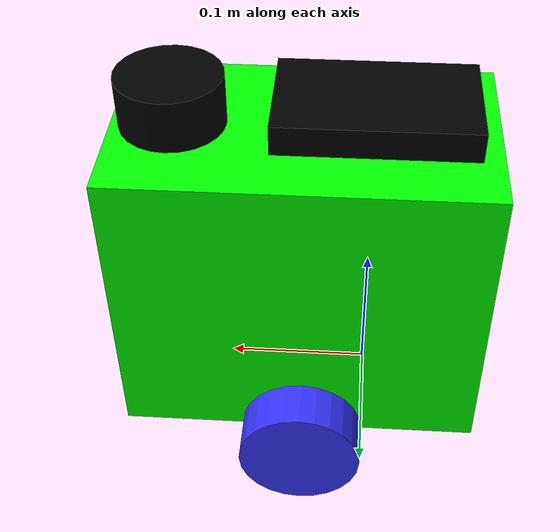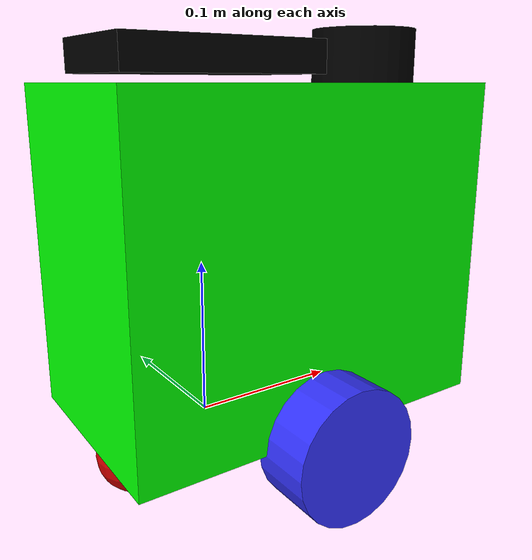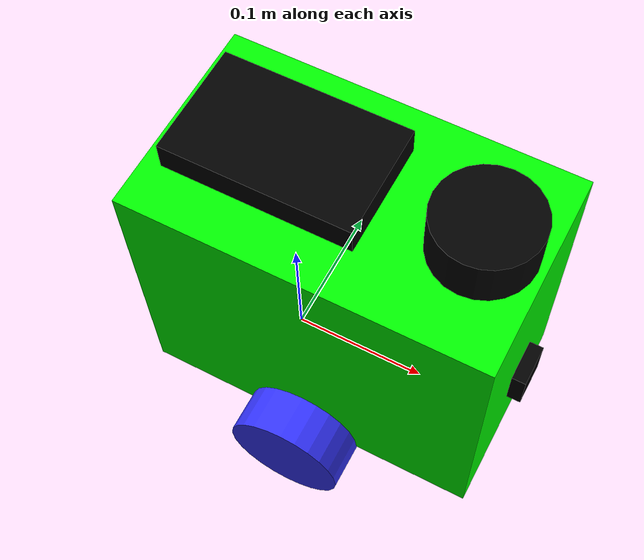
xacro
<?xml version="1.0"?>
<robot xmlns:xacro="http://www.ros.org/wiki/xacro"  name="robot">

    <xacro:arg name="use_ros2_control" default="true"/>
    <xacro:arg name="sim_mode" default="false"/>
    <xacro:arg name="use_ros2_control_gz_sim"       default="false"/>

    <xacro:include filename="robot_body.xacro"  />

    <xacro:if value="$(arg use_ros2_control)">
        <xacro:include filename="ros2_control.xacro" />
    </xacro:if>

    <xacro:unless value="$(arg use_ros2_control)">
        <xacro:include filename="gazebo_control.xacro" />
    </xacro:unless>

    <xacro:include filename="rplidar.xacro"/>

    <xacro:include filename="depth_camera.xacro" />

    <xacro:include filename="imu.xacro"/>

    <xacro:include filename="gps.xacro"/>

</robot>

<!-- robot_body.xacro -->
<robot xmlns:xacro="http://www.ros.org/wiki/xacro" >
    <xacro:include filename="inertial_macros.xacro" />
    <material name ="white">
        <color rgba ="1 1 1 1" />
    </material>

    <material name ="orange">
        <color rgba ="1 0.3 0.1 1" />
    </material>

    <material name ="blue">
        <color rgba ="0.2 0.2 1 1" />
    </material>

    <material name ="black">
        <color rgba ="0 0 0 1" />
    </material>

    <material name="red">
        <color rgba="0.8 0.0 0.0 1.0"/>
    </material>

    <material name ="green">
            <color rgba="0.0 1.0 0.0 1.0"/>
    </material>

    <link name="base_link">

    </link>

    <joint name="base_footprint_joint" type="fixed">
        <parent link="base_link" />
        <child link="base_footprint"  />
        <origin xyz ="0 0 0" rpy="0 0 0" />
    </joint>

   <link name="base_footprint">

    </link>

    <joint name="chasssis_joint" type="fixed">
        <parent link="base_link" />
        <child link="chassis"  />
        <origin xyz ="-0.08 0 0" />
    </joint>

    <link name="chassis">

        <visual>
            <origin xyz = "0.125 0 0.105"  />
            <geometry>
                <box size="0.25 0.145 0.21" />

            </geometry>
                <material name="green" />

        </visual>

        <collision>
            <origin xyz = "0.125 0 0.105"  />
            <geometry>
                <box size="0.25 0.145 0.21" />
            </geometry>

        </collision>

        <xacro:inertial_box mass="0.5" x="0.25" y="0.145" z="0.21">
            <origin xyz="0.125 0 0.105" rpy="0 0 0"/>
        </xacro:inertial_box>

    </link>

    <gazebo reference="chassis">
        <material>Gazebo/Green</material>
    </gazebo>

    <joint name="left_wheel_joint" type="continuous">

        <parent link="base_link"/>
        <child link="left_wheel"/>
        <origin xyz="0.0425 0.085 0" rpy="-${pi/2} 0 0" />
        <axis xyz ="0 0 1"/>

    </joint>

    <link name="left_wheel">

        <visual>
            <geometry>
                <cylinder radius="0.0425"  length="0.04"/>
            </geometry>

            <material name="blue" />
        </visual>

        <collision>
            <geometry>
                <cylinder radius="0.0425"  length="0.04"/>
            </geometry>
        </collision>

        <xacro:inertial_cylinder mass="0.1" length="0.04" radius="0.0425">
            <origin xyz="0 0 0" rpy="0 0 0"/>
        </xacro:inertial_cylinder>

    </link>

    <gazebo reference="left_wheel">
        <material>Gazebo/Blue</material>
    </gazebo>

    <joint name="right_wheel_joint" type="continuous">

        <parent link="base_link"/>
        <child link="right_wheel"/>
        <origin xyz="0.0425 -0.085 0" rpy="${pi/2} 0 0" />
        <axis xyz ="0 0 -1"/>

    </joint>

    <link name="right_wheel">

        <visual>
            <geometry>
                <cylinder radius="0.0425"  length="0.04"/>
            </geometry>

            <material name="blue" />
        </visual>

        <collision>
            <geometry>
                <cylinder radius="0.0425"  length="0.04"/>
            </geometry>
        </collision>

        <xacro:inertial_cylinder mass="0.1" length="0.04" radius="0.0425">
            <origin xyz="0 0 0" rpy="0 0 0"/>
        </xacro:inertial_cylinder>

    </link>

    <gazebo reference="right_wheel">
        <material>Gazebo/Blue</material>
    </gazebo>

    <joint name="front_caster_wheel_joint"  type="fixed">

        <parent link="chassis" />
        <child link ="front_caster_wheel" />
        <origin xyz ="0.215 0 -0.018"/>
    </joint>

    <link name="front_caster_wheel">
        <visual>
            <geometry>
                <sphere radius="0.025"/>
            </geometry>
            <material name="red"/>
        </visual>

        <collision>
            <geometry>
                <sphere radius="0.025"/>
            </geometry>
        </collision>

        <xacro:inertial_sphere mass="0.1" radius="0.025">
            <origin xyz="0 0 0" rpy="0 0 0"/>
        </xacro:inertial_sphere>

    </link>

    <gazebo reference="front_caster_wheel">
        <material>Gazebo/Red</material>
        <mu1 value="0.001"/>
        <mu2 value="0.001"/>
    </gazebo>

    <joint name="back_caster_wheel_joint"  type="fixed">

        <parent link="chassis" />
        <child link ="back_caster_wheel" />
        <origin xyz ="0.03 0 -0.015"/>
    </joint>

    <link name="back_caster_wheel">
        <visual>
            <geometry>
                <sphere radius="0.025"/>
            </geometry>
            <material name="red"/>
        </visual>

        <collision>
            <geometry>
                <sphere radius="0.025"/>
            </geometry>
        </collision>

        <xacro:inertial_sphere mass="0.1" radius="0.025">
            <origin xyz="0 0 0" rpy="0 0 0"/>
        </xacro:inertial_sphere>

    </link>

    <gazebo reference="back_caster_wheel">
        <material>Gazebo/Red</material>
        <mu1 value="0.001"/>
        <mu2 value="0.001"/>
    </gazebo>

</robot>

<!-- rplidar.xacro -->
<robot xmlns:xacro="http://www.ros.org/wiki/xacro">

    <joint name="laser_joint" type="fixed">

        <parent link="chassis"/>
        <child link="laser_frame"/>
        <origin xyz="0.21 0 0.225" rpy="0 0 0"/>

    </joint>

    <link name="laser_frame">
                <visual>
            <geometry>
                <cylinder radius="0.035"  length="0.04"/>
            </geometry>

            <material name="black" />
        </visual>

        <collision>
            <geometry>
                <cylinder radius="0.035"  length="0.04"/>
            </geometry>
        </collision>

        <xacro:inertial_cylinder mass="0.1" length="0.04" radius="0.035">
            <origin xyz="0 0 0" rpy="0 0 0"/>
        </xacro:inertial_cylinder>

    </link>

 <gazebo reference="laser_frame">
        <material>Gazebo/Black</material>

        <sensor name="laser" type="gpu_lidar">
            <pose> 0 0 0 0 0 0 </pose>
            <visualize>false</visualize>
            <update_rate>10</update_rate>
            <lidar>
                <scan>
                    <horizontal>
                        <samples>360</samples>
                        <min_angle>-3.14</min_angle>
                        <max_angle>3.14</max_angle>
                    </horizontal>
                </scan>
                <range>
                    <min>0.3</min>
                    <max>12</max>
                </range>
            </lidar>
            <topic>scan</topic>
            <gz_frame_id>laser_frame</gz_frame_id>
        </sensor>
    </gazebo>

</robot>

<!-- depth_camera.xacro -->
<robot xmlns:xacro="http://www.ros.org/wiki/xacro" >

    <joint name="camera_joint" type="fixed">

        <parent link="chassis"/>
        <child link="camera_link"/>
        <origin xyz="0.255 0 0.08" rpy="0 0 0"/>

    </joint>

    <link name="camera_link">
                <visual>
            <geometry>
                <box size="0.010 0.03 0.03" />
            </geometry>

            <material name="black" />
        </visual>

    </link>

    <joint name="camera_optical_joint" type="fixed">
        <parent link="camera_link"/>
        <child link="camera_link_optical"/>
        <origin xyz="0 0 0" rpy="${-pi/2} 0 ${-pi/2}"/>
    </joint>

    <link name="camera_link_optical"></link>

    <gazebo reference="camera_link">
        <sensor
          name="kinect_depth_camera"
          type="depth">
          <camera name="camera">
            <camera_info_topic>
             /kinect/depth/camera_info
            </camera_info_topic>
            <horizontal_fov>
              1.22173
            </horizontal_fov>
            <vertical_fov>
              1.22173
            </vertical_fov>
            <image>
              <width>640</width>
              <height>480</height>
              <format>B8G8R8</format>
            </image>
            <clip>
              <near>1.5</near>
              <far>35.0</far>
            </clip>
            <noise>
              <type>gaussian</type>
              <mean>0.0</mean>
              <stddev>0.100</stddev>
            </noise>
          </camera>
          <always_on>1</always_on>
          <update_rate>30</update_rate>
          <visualize>false</visualize>

          <camera_info_topic>
            /kinect/depth/camera_info
          </camera_info_topic>
          <topic>
            /kinect/depth/image_raw
          </topic>
          <gz_frame_id>camera_link_optical</gz_frame_id>
          <min_depth>1</min_depth>
          <max_depth>100</max_depth>
        </sensor>

        <sensor name="kinect_rgb_camera" type="camera">
            <pose> 0 0 0 0 0 0 </pose>
            <visualize>true</visualize>
            <update_rate>10</update_rate>
            <camera>
                <camera_info_topic>/kinect/rgb/camera_info</camera_info_topic>
                <horizontal_fov>1.36136</horizontal_fov>
                <image>
                    <format>R8G8B8</format>
                    <width>640</width>
                    <height>480</height>
                </image>
                <clip>
                    <near>0.05</near>
                    <far>8.0</far>
                </clip>
            </camera>
            <topic>/kinect/rgb/image_raw</topic>
            <gz_frame_id>camera_link_optical</gz_frame_id>
        </sensor>

    </gazebo>

</robot>

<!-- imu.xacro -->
<robot xmlns:xacro="http://www.ros.org/wiki/xacro">

        <joint name="imu_joint" type="fixed">
            <parent link="chassis"/>
            <child link="imu_frame"/>
            <origin xyz="0.06 0 0.225" rpy="0 0 0"/>
        </joint>

        <link name="imu_frame">
            <inertial>
                <mass value="0.001"/>
                <origin rpy="0 0 0" xyz="0 0 0"/>
                <inertia ixx="0.0001" ixy="0" ixz="0" iyy="0.000001" iyz="0" izz="0.0001"/>
            </inertial>
            <visual>
                <origin rpy="0 0 0" xyz="0 0 0"/>
                <geometry>
                    <box size="0.001 0.001 0.001"/>
                </geometry>
            </visual>
            <collision>
                <origin rpy="0 0 0" xyz="0 0 0"/>
                <geometry>
                    <box size=".001 .001 .001"/>
                </geometry>
            </collision>
        </link>

   <gazebo reference="imu_frame">
        <sensor
          name="imu_sensor"
          type="imu">
          <always_on>true</always_on>
          <update_rate>50</update_rate>
          <visualize>true</visualize>

          <imu>
                    <angular_velocity>
                        <x>
                            <noise type="gaussian">
                                <mean>0.0</mean>
                                <stddev>0.00</stddev>
                            </noise>
                        </x>

                        <y>
                            <noise type="gaussian">
                                <mean>0.0</mean>
                                <stddev>0.00</stddev>
                            </noise>
                        </y>

                        <z>
                            <noise type="gaussian">
                                <mean>0.0</mean>
                                <stddev>0.00</stddev>
                            </noise>
                        </z>
                    </angular_velocity>

                    <linear_acceleration>
                        <x>
                            <noise type="gaussian">
                                <mean>0.0</mean>
                                <stddev>0.00</stddev>
                            </noise>
                        </x>

                        <y>
                            <noise type="gaussian">
                                <mean>0.0</mean>
                                <stddev>0.00</stddev>
                            </noise>
                        </y>

                        <z>
                            <noise type="gaussian">
                                <mean>0.0</mean>
                                <stddev>0.00</stddev>
                            </noise>
                        </z>
                    </linear_acceleration>

            <orientation_enabled>true</orientation_enabled>
            <angular_velocity_enabled>
              true
            </angular_velocity_enabled>
            <linear_acceleration_enabled>
              true
            </linear_acceleration_enabled>
          </imu>

          <topic>/imu/data</topic>
          <gz_frame_id>imu_frame</gz_frame_id>
            <!-- name="gz::sim::systems::Imu"> -->
          <plugin
            filename="ignition-gazebo-imu-system"
            name="ignition::gazebo::systems::Imu" />

        </sensor>
      </gazebo>

</robot>

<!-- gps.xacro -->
<robot xmlns:xacro="http://www.ros.org/wiki/xacro">
        <!-- ANTENNA GPS -->
        <joint name="gps_joint" type="fixed">
            <parent link="chassis"/>
            <child link="gps_frame"/>
            <origin xyz="0.08 0 0.225" rpy="0 0 0"/>

        </joint>

        <link name="gps_frame">

            <xacro:inertial_box mass="0.05" x="0.13" y="0.08" z="0.02">
                <origin xyz="0 0 0" rpy="0 0 0"/>
            </xacro:inertial_box>

            <visual>
                <origin rpy="0 0 0" xyz="0 0 0"/>
                <geometry>
                    <box size="0.13 0.08 0.02" />
                </geometry>
                <material name="black" />
            </visual>

            <collision>
                <origin rpy="0 0 0" xyz="0 0 0"/>
                <geometry>
                    <box size="0.13 0.08 0.02" />
                </geometry>
            </collision>

        </link>

      <gazebo reference="gps_frame">
        <sensor
          name="gps"
          type="navsat">
          <navsat>
              <position_sensing>
                  <horizontal>
                      <noise type="gaussian">
                          <mean>0.0</mean>
                          <stddev>2</stddev>
                      </noise>
                  </horizontal>
                  <vertical>
                      <noise type="gaussian">
                          <mean>0.0</mean>
                          <stddev>2.5</stddev>
                      </noise>
                  </vertical>
              </position_sensing>
              <velocity_sensing>
                  <horizontal>
                      <noise type="gaussian">
                          <mean>0.0</mean>
                          <stddev>0.1</stddev>
                      </noise>
                  </horizontal>
                  <vertical>
                      <noise type="gaussian">
                          <mean>0.0</mean>
                          <stddev>0.1</stddev>
                      </noise>
                  </vertical>
              </velocity_sensing>
          </navsat>
          <always_on>1</always_on>
          <update_rate>1.0</update_rate>
          <topic>/gps/fix</topic>
          <gz_frame_id>gps_frame</gz_frame_id>
          <plugin
            filename="ignition-gazebo-navsat-system"
            name="ignition::gazebo::systems::NavSat" />
        </sensor>
      </gazebo>

</robot>
